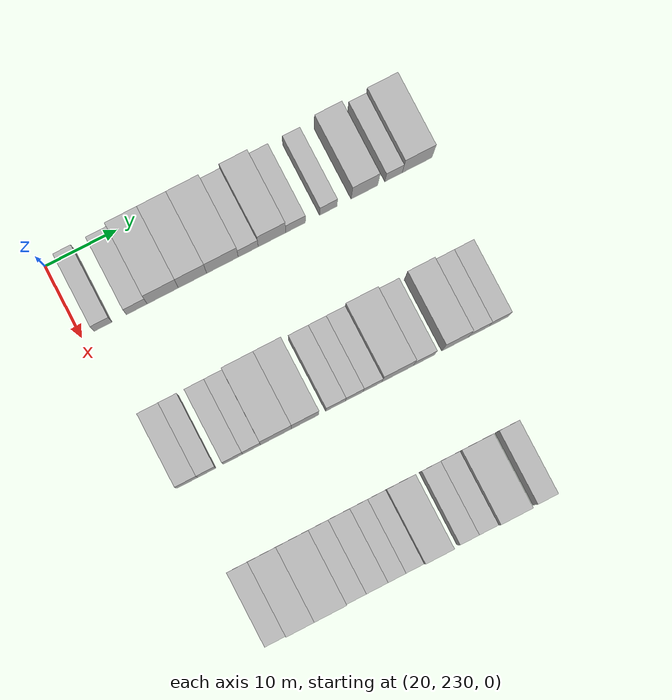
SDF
<sdf version="1.6">
 <world name="default">
  <model name="building_147">
   <static>1</static>
   <pose>25.0000 233.0039 0 0.000000 0.000000 0.000000</pose>
   <link name="link">
    <pose>0 0 3.00 0 0 0</pose>
    <collision name="collision"><geometry><box><size>10.0000 2.4675 6.0000</size></box></geometry></collision>
    <visual name="visual">
     <cast_shadows>0</cast_shadows>
     <geometry><box><size>10.0000 2.4675 6.0000</size></box></geometry>
     <material>
      <script>
       <uri>model://HANNAS_wall/materials/scripts</uri>
       <uri>model://HANNAS_wall/materials/textures</uri>
       <name>vrc/HANNAS_wall</name>
      </script>
     </material>
    </visual>
   </link>
  </model>
  <model name="building_148">
   <static>1</static>
   <pose>25.0000 237.6811 0 0.000000 0.000000 0.000000</pose>
   <link name="link">
    <pose>0 0 3.00 0 0 0</pose>
    <collision name="collision"><geometry><box><size>10.0000 2.8870 6.0000</size></box></geometry></collision>
    <visual name="visual">
     <cast_shadows>0</cast_shadows>
     <geometry><box><size>10.0000 2.8870 6.0000</size></box></geometry>
     <material>
      <script>
       <uri>model://HANNAS_wall/materials/scripts</uri>
       <uri>model://HANNAS_wall/materials/textures</uri>
       <name>vrc/HANNAS_wall</name>
      </script>
     </material>
    </visual>
   </link>
  </model>
  <model name="building_149">
   <static>1</static>
   <pose>25.0000 241.2977 0 0.000000 0.000000 0.000000</pose>
   <link name="link">
    <pose>0 0 4.50 0 0 0</pose>
    <collision name="collision"><geometry><box><size>10.0000 4.3461 9.0000</size></box></geometry></collision>
    <visual name="visual">
     <cast_shadows>0</cast_shadows>
     <geometry><box><size>10.0000 4.3461 9.0000</size></box></geometry>
     <material>
      <script>
       <uri>model://HANNAS_wall/materials/scripts</uri>
       <uri>model://HANNAS_wall/materials/textures</uri>
       <name>vrc/HANNAS_wall</name>
      </script>
     </material>
    </visual>
   </link>
  </model>
  <model name="building_150">
   <static>1</static>
   <pose>25.0000 245.4426 0 0.000000 0.000000 0.000000</pose>
   <link name="link">
    <pose>0 0 4.50 0 0 0</pose>
    <collision name="collision"><geometry><box><size>10.0000 3.9438 9.0000</size></box></geometry></collision>
    <visual name="visual">
     <cast_shadows>0</cast_shadows>
     <geometry><box><size>10.0000 3.9438 9.0000</size></box></geometry>
     <material>
      <script>
       <uri>model://HANNAS_wall/materials/scripts</uri>
       <uri>model://HANNAS_wall/materials/textures</uri>
       <name>vrc/HANNAS_wall</name>
      </script>
     </material>
    </visual>
   </link>
  </model>
  <model name="building_151">
   <static>1</static>
   <pose>25.0000 249.6217 0 0.000000 0.000000 0.000000</pose>
   <link name="link">
    <pose>0 0 4.50 0 0 0</pose>
    <collision name="collision"><geometry><box><size>10.0000 4.4144 9.0000</size></box></geometry></collision>
    <visual name="visual">
     <cast_shadows>0</cast_shadows>
     <geometry><box><size>10.0000 4.4144 9.0000</size></box></geometry>
     <material>
      <script>
       <uri>model://HANNAS_wall/materials/scripts</uri>
       <uri>model://HANNAS_wall/materials/textures</uri>
       <name>vrc/HANNAS_wall</name>
      </script>
     </material>
    </visual>
   </link>
  </model>
  <model name="building_152">
   <static>1</static>
   <pose>25.0000 253.2204 0 0.000000 0.000000 0.000000</pose>
   <link name="link">
    <pose>0 0 3.00 0 0 0</pose>
    <collision name="collision"><geometry><box><size>10.0000 2.7829 6.0000</size></box></geometry></collision>
    <visual name="visual">
     <cast_shadows>0</cast_shadows>
     <geometry><box><size>10.0000 2.7829 6.0000</size></box></geometry>
     <material>
      <script>
       <uri>model://HANNAS_wall/materials/scripts</uri>
       <uri>model://HANNAS_wall/materials/textures</uri>
       <name>vrc/HANNAS_wall</name>
      </script>
     </material>
    </visual>
   </link>
  </model>
  <model name="building_153">
   <static>1</static>
   <pose>25.0000 256.5295 0 0.000000 0.000000 0.000000</pose>
   <link name="link">
    <pose>0 0 4.50 0 0 0</pose>
    <collision name="collision"><geometry><box><size>10.0000 3.8353 9.0000</size></box></geometry></collision>
    <visual name="visual">
     <cast_shadows>0</cast_shadows>
     <geometry><box><size>10.0000 3.8353 9.0000</size></box></geometry>
     <material>
      <script>
       <uri>model://HANNAS_wall/materials/scripts</uri>
       <uri>model://HANNAS_wall/materials/textures</uri>
       <name>vrc/HANNAS_wall</name>
      </script>
     </material>
    </visual>
   </link>
  </model>
  <model name="building_154">
   <static>1</static>
   <pose>25.0000 259.8248 0 0.000000 0.000000 0.000000</pose>
   <link name="link">
    <pose>0 0 3.00 0 0 0</pose>
    <collision name="collision"><geometry><box><size>10.0000 2.7552 6.0000</size></box></geometry></collision>
    <visual name="visual">
     <cast_shadows>0</cast_shadows>
     <geometry><box><size>10.0000 2.7552 6.0000</size></box></geometry>
     <material>
      <script>
       <uri>model://HANNAS_wall/materials/scripts</uri>
       <uri>model://HANNAS_wall/materials/textures</uri>
       <name>vrc/HANNAS_wall</name>
      </script>
     </material>
    </visual>
   </link>
  </model>
  <model name="building_155">
   <static>1</static>
   <pose>25.0000 264.4104 0 0.000000 0.000000 0.000000</pose>
   <link name="link">
    <pose>0 0 3.00 0 0 0</pose>
    <collision name="collision"><geometry><box><size>10.0000 2.4160 6.0000</size></box></geometry></collision>
    <visual name="visual">
     <cast_shadows>0</cast_shadows>
     <geometry><box><size>10.0000 2.4160 6.0000</size></box></geometry>
     <material>
      <script>
       <uri>model://HANNAS_wall/materials/scripts</uri>
       <uri>model://HANNAS_wall/materials/textures</uri>
       <name>vrc/HANNAS_wall</name>
      </script>
     </material>
    </visual>
   </link>
  </model>
  <model name="building_156">
   <static>1</static>
   <pose>25.0000 269.4851 0 0.000000 0.000000 0.000000</pose>
   <link name="link">
    <pose>0 0 4.50 0 0 0</pose>
    <collision name="collision"><geometry><box><size>10.0000 3.7335 9.0000</size></box></geometry></collision>
    <visual name="visual">
     <cast_shadows>0</cast_shadows>
     <geometry><box><size>10.0000 3.7335 9.0000</size></box></geometry>
     <material>
      <script>
       <uri>model://HANNAS_wall/materials/scripts</uri>
       <uri>model://HANNAS_wall/materials/textures</uri>
       <name>vrc/HANNAS_wall</name>
      </script>
     </material>
    </visual>
   </link>
  </model>
  <model name="building_157">
   <static>1</static>
   <pose>25.0000 273.5731 0 0.000000 0.000000 0.000000</pose>
   <link name="link">
    <pose>0 0 3.00 0 0 0</pose>
    <collision name="collision"><geometry><box><size>10.0000 2.4425 6.0000</size></box></geometry></collision>
    <visual name="visual">
     <cast_shadows>0</cast_shadows>
     <geometry><box><size>10.0000 2.4425 6.0000</size></box></geometry>
     <material>
      <script>
       <uri>model://HANNAS_wall/materials/scripts</uri>
       <uri>model://HANNAS_wall/materials/textures</uri>
       <name>vrc/HANNAS_wall</name>
      </script>
     </material>
    </visual>
   </link>
  </model>
  <model name="building_158">
   <static>1</static>
   <pose>25.0000 276.8900 0 0.000000 0.000000 0.000000</pose>
   <link name="link">
    <pose>0 0 4.50 0 0 0</pose>
    <collision name="collision"><geometry><box><size>10.0000 4.1914 9.0000</size></box></geometry></collision>
    <visual name="visual">
     <cast_shadows>0</cast_shadows>
     <geometry><box><size>10.0000 4.1914 9.0000</size></box></geometry>
     <material>
      <script>
       <uri>model://HANNAS_wall/materials/scripts</uri>
       <uri>model://HANNAS_wall/materials/textures</uri>
       <name>vrc/HANNAS_wall</name>
      </script>
     </material>
    </visual>
   </link>
  </model>
  <model name="building_326">
   <static>1</static>
   <pose>47.0000 233.4302 0 0.000000 0.000000 0.000000</pose>
   <link name="link">
    <pose>0 0 3.00 0 0 0</pose>
    <collision name="collision"><geometry><box><size>10.0000 2.8937 6.0000</size></box></geometry></collision>
    <visual name="visual">
     <cast_shadows>0</cast_shadows>
     <geometry><box><size>10.0000 2.8937 6.0000</size></box></geometry>
     <material>
      <script>
       <uri>model://HANNAS_wall/materials/scripts</uri>
       <uri>model://HANNAS_wall/materials/textures</uri>
       <name>vrc/HANNAS_wall</name>
      </script>
     </material>
    </visual>
   </link>
  </model>
  <model name="building_327">
   <static>1</static>
   <pose>47.0000 236.1390 0 0.000000 0.000000 0.000000</pose>
   <link name="link">
    <pose>0 0 3.00 0 0 0</pose>
    <collision name="collision"><geometry><box><size>10.0000 2.5239 6.0000</size></box></geometry></collision>
    <visual name="visual">
     <cast_shadows>0</cast_shadows>
     <geometry><box><size>10.0000 2.5239 6.0000</size></box></geometry>
     <material>
      <script>
       <uri>model://HANNAS_wall/materials/scripts</uri>
       <uri>model://HANNAS_wall/materials/textures</uri>
       <name>vrc/HANNAS_wall</name>
      </script>
     </material>
    </visual>
   </link>
  </model>
  <model name="building_328">
   <static>1</static>
   <pose>47.0000 239.7476 0 0.000000 0.000000 0.000000</pose>
   <link name="link">
    <pose>0 0 3.00 0 0 0</pose>
    <collision name="collision"><geometry><box><size>10.0000 2.6932 6.0000</size></box></geometry></collision>
    <visual name="visual">
     <cast_shadows>0</cast_shadows>
     <geometry><box><size>10.0000 2.6932 6.0000</size></box></geometry>
     <material>
      <script>
       <uri>model://HANNAS_wall/materials/scripts</uri>
       <uri>model://HANNAS_wall/materials/textures</uri>
       <name>vrc/HANNAS_wall</name>
      </script>
     </material>
    </visual>
   </link>
  </model>
  <model name="building_329">
   <static>1</static>
   <pose>47.0000 242.3303 0 0.000000 0.000000 0.000000</pose>
   <link name="link">
    <pose>0 0 3.00 0 0 0</pose>
    <collision name="collision"><geometry><box><size>10.0000 2.4722 6.0000</size></box></geometry></collision>
    <visual name="visual">
     <cast_shadows>0</cast_shadows>
     <geometry><box><size>10.0000 2.4722 6.0000</size></box></geometry>
     <material>
      <script>
       <uri>model://HANNAS_wall/materials/scripts</uri>
       <uri>model://HANNAS_wall/materials/textures</uri>
       <name>vrc/HANNAS_wall</name>
      </script>
     </material>
    </visual>
   </link>
  </model>
  <model name="building_330">
   <static>1</static>
   <pose>47.0000 245.7153 0 0.000000 0.000000 0.000000</pose>
   <link name="link">
    <pose>0 0 4.50 0 0 0</pose>
    <collision name="collision"><geometry><box><size>10.0000 4.2978 9.0000</size></box></geometry></collision>
    <visual name="visual">
     <cast_shadows>0</cast_shadows>
     <geometry><box><size>10.0000 4.2978 9.0000</size></box></geometry>
     <material>
      <script>
       <uri>model://HANNAS_wall/materials/scripts</uri>
       <uri>model://HANNAS_wall/materials/textures</uri>
       <name>vrc/HANNAS_wall</name>
      </script>
     </material>
    </visual>
   </link>
  </model>
  <model name="building_331">
   <static>1</static>
   <pose>47.0000 249.7360 0 0.000000 0.000000 0.000000</pose>
   <link name="link">
    <pose>0 0 4.50 0 0 0</pose>
    <collision name="collision"><geometry><box><size>10.0000 3.7436 9.0000</size></box></geometry></collision>
    <visual name="visual">
     <cast_shadows>0</cast_shadows>
     <geometry><box><size>10.0000 3.7436 9.0000</size></box></geometry>
     <material>
      <script>
       <uri>model://HANNAS_wall/materials/scripts</uri>
       <uri>model://HANNAS_wall/materials/textures</uri>
       <name>vrc/HANNAS_wall</name>
      </script>
     </material>
    </visual>
   </link>
  </model>
  <model name="building_332">
   <static>1</static>
   <pose>47.0000 253.9769 0 0.000000 0.000000 0.000000</pose>
   <link name="link">
    <pose>0 0 3.00 0 0 0</pose>
    <collision name="collision"><geometry><box><size>10.0000 2.7381 6.0000</size></box></geometry></collision>
    <visual name="visual">
     <cast_shadows>0</cast_shadows>
     <geometry><box><size>10.0000 2.7381 6.0000</size></box></geometry>
     <material>
      <script>
       <uri>model://HANNAS_wall/materials/scripts</uri>
       <uri>model://HANNAS_wall/materials/textures</uri>
       <name>vrc/HANNAS_wall</name>
      </script>
     </material>
    </visual>
   </link>
  </model>
  <model name="building_333">
   <static>1</static>
   <pose>47.0000 256.5766 0 0.000000 0.000000 0.000000</pose>
   <link name="link">
    <pose>0 0 3.00 0 0 0</pose>
    <collision name="collision"><geometry><box><size>10.0000 2.4613 6.0000</size></box></geometry></collision>
    <visual name="visual">
     <cast_shadows>0</cast_shadows>
     <geometry><box><size>10.0000 2.4613 6.0000</size></box></geometry>
     <material>
      <script>
       <uri>model://HANNAS_wall/materials/scripts</uri>
       <uri>model://HANNAS_wall/materials/textures</uri>
       <name>vrc/HANNAS_wall</name>
      </script>
     </material>
    </visual>
   </link>
  </model>
  <model name="building_334">
   <static>1</static>
   <pose>47.0000 259.1070 0 0.000000 0.000000 0.000000</pose>
   <link name="link">
    <pose>0 0 3.00 0 0 0</pose>
    <collision name="collision"><geometry><box><size>10.0000 2.5995 6.0000</size></box></geometry></collision>
    <visual name="visual">
     <cast_shadows>0</cast_shadows>
     <geometry><box><size>10.0000 2.5995 6.0000</size></box></geometry>
     <material>
      <script>
       <uri>model://HANNAS_wall/materials/scripts</uri>
       <uri>model://HANNAS_wall/materials/textures</uri>
       <name>vrc/HANNAS_wall</name>
      </script>
     </material>
    </visual>
   </link>
  </model>
  <model name="building_335">
   <static>1</static>
   <pose>47.0000 262.6063 0 0.000000 0.000000 0.000000</pose>
   <link name="link">
    <pose>0 0 4.50 0 0 0</pose>
    <collision name="collision"><geometry><box><size>10.0000 4.3993 9.0000</size></box></geometry></collision>
    <visual name="visual">
     <cast_shadows>0</cast_shadows>
     <geometry><box><size>10.0000 4.3993 9.0000</size></box></geometry>
     <material>
      <script>
       <uri>model://HANNAS_wall/materials/scripts</uri>
       <uri>model://HANNAS_wall/materials/textures</uri>
       <name>vrc/HANNAS_wall</name>
      </script>
     </material>
    </visual>
   </link>
  </model>
  <model name="building_336">
   <static>1</static>
   <pose>47.0000 266.3006 0 0.000000 0.000000 0.000000</pose>
   <link name="link">
    <pose>0 0 3.00 0 0 0</pose>
    <collision name="collision"><geometry><box><size>10.0000 2.9892 6.0000</size></box></geometry></collision>
    <visual name="visual">
     <cast_shadows>0</cast_shadows>
     <geometry><box><size>10.0000 2.9892 6.0000</size></box></geometry>
     <material>
      <script>
       <uri>model://HANNAS_wall/materials/scripts</uri>
       <uri>model://HANNAS_wall/materials/textures</uri>
       <name>vrc/HANNAS_wall</name>
      </script>
     </material>
    </visual>
   </link>
  </model>
  <model name="building_337">
   <static>1</static>
   <pose>47.0000 270.6510 0 0.000000 0.000000 0.000000</pose>
   <link name="link">
    <pose>0 0 4.50 0 0 0</pose>
    <collision name="collision"><geometry><box><size>10.0000 3.7116 9.0000</size></box></geometry></collision>
    <visual name="visual">
     <cast_shadows>0</cast_shadows>
     <geometry><box><size>10.0000 3.7116 9.0000</size></box></geometry>
     <material>
      <script>
       <uri>model://HANNAS_wall/materials/scripts</uri>
       <uri>model://HANNAS_wall/materials/textures</uri>
       <name>vrc/HANNAS_wall</name>
      </script>
     </material>
    </visual>
   </link>
  </model>
  <model name="building_338">
   <static>1</static>
   <pose>47.0000 273.9385 0 0.000000 0.000000 0.000000</pose>
   <link name="link">
    <pose>0 0 3.00 0 0 0</pose>
    <collision name="collision"><geometry><box><size>10.0000 2.8635 6.0000</size></box></geometry></collision>
    <visual name="visual">
     <cast_shadows>0</cast_shadows>
     <geometry><box><size>10.0000 2.8635 6.0000</size></box></geometry>
     <material>
      <script>
       <uri>model://HANNAS_wall/materials/scripts</uri>
       <uri>model://HANNAS_wall/materials/textures</uri>
       <name>vrc/HANNAS_wall</name>
      </script>
     </material>
    </visual>
   </link>
  </model>
  <model name="building_339">
   <static>1</static>
   <pose>47.0000 276.7139 0 0.000000 0.000000 0.000000</pose>
   <link name="link">
    <pose>0 0 3.00 0 0 0</pose>
    <collision name="collision"><geometry><box><size>10.0000 2.6874 6.0000</size></box></geometry></collision>
    <visual name="visual">
     <cast_shadows>0</cast_shadows>
     <geometry><box><size>10.0000 2.6874 6.0000</size></box></geometry>
     <material>
      <script>
       <uri>model://HANNAS_wall/materials/scripts</uri>
       <uri>model://HANNAS_wall/materials/textures</uri>
       <name>vrc/HANNAS_wall</name>
      </script>
     </material>
    </visual>
   </link>
  </model>
  <model name="building_510">
   <static>1</static>
   <pose>69.0000 234.2905 0 0.000000 0.000000 0.000000</pose>
   <link name="link">
    <pose>0 0 3.00 0 0 0</pose>
    <collision name="collision"><geometry><box><size>10.0000 2.8925 6.0000</size></box></geometry></collision>
    <visual name="visual">
     <cast_shadows>0</cast_shadows>
     <geometry><box><size>10.0000 2.8925 6.0000</size></box></geometry>
     <material>
      <script>
       <uri>model://HANNAS_wall/materials/scripts</uri>
       <uri>model://HANNAS_wall/materials/textures</uri>
       <name>vrc/HANNAS_wall</name>
      </script>
     </material>
    </visual>
   </link>
  </model>
  <model name="building_511">
   <static>1</static>
   <pose>69.0000 237.6364 0 0.000000 0.000000 0.000000</pose>
   <link name="link">
    <pose>0 0 4.50 0 0 0</pose>
    <collision name="collision"><geometry><box><size>10.0000 3.7993 9.0000</size></box></geometry></collision>
    <visual name="visual">
     <cast_shadows>0</cast_shadows>
     <geometry><box><size>10.0000 3.7993 9.0000</size></box></geometry>
     <material>
      <script>
       <uri>model://HANNAS_wall/materials/scripts</uri>
       <uri>model://HANNAS_wall/materials/textures</uri>
       <name>vrc/HANNAS_wall</name>
      </script>
     </material>
    </visual>
   </link>
  </model>
  <model name="building_512">
   <static>1</static>
   <pose>69.0000 241.7159 0 0.000000 0.000000 0.000000</pose>
   <link name="link">
    <pose>0 0 4.50 0 0 0</pose>
    <collision name="collision"><geometry><box><size>10.0000 4.3597 9.0000</size></box></geometry></collision>
    <visual name="visual">
     <cast_shadows>0</cast_shadows>
     <geometry><box><size>10.0000 4.3597 9.0000</size></box></geometry>
     <material>
      <script>
       <uri>model://HANNAS_wall/materials/scripts</uri>
       <uri>model://HANNAS_wall/materials/textures</uri>
       <name>vrc/HANNAS_wall</name>
      </script>
     </material>
    </visual>
   </link>
  </model>
  <model name="building_513">
   <static>1</static>
   <pose>69.0000 245.2506 0 0.000000 0.000000 0.000000</pose>
   <link name="link">
    <pose>0 0 3.00 0 0 0</pose>
    <collision name="collision"><geometry><box><size>10.0000 2.7098 6.0000</size></box></geometry></collision>
    <visual name="visual">
     <cast_shadows>0</cast_shadows>
     <geometry><box><size>10.0000 2.7098 6.0000</size></box></geometry>
     <material>
      <script>
       <uri>model://HANNAS_wall/materials/scripts</uri>
       <uri>model://HANNAS_wall/materials/textures</uri>
       <name>vrc/HANNAS_wall</name>
      </script>
     </material>
    </visual>
   </link>
  </model>
  <model name="building_514">
   <static>1</static>
   <pose>69.0000 248.0808 0 0.000000 0.000000 0.000000</pose>
   <link name="link">
    <pose>0 0 3.00 0 0 0</pose>
    <collision name="collision"><geometry><box><size>10.0000 2.9504 6.0000</size></box></geometry></collision>
    <visual name="visual">
     <cast_shadows>0</cast_shadows>
     <geometry><box><size>10.0000 2.9504 6.0000</size></box></geometry>
     <material>
      <script>
       <uri>model://HANNAS_wall/materials/scripts</uri>
       <uri>model://HANNAS_wall/materials/textures</uri>
       <name>vrc/HANNAS_wall</name>
      </script>
     </material>
    </visual>
   </link>
  </model>
  <model name="building_515">
   <static>1</static>
   <pose>69.0000 250.7707 0 0.000000 0.000000 0.000000</pose>
   <link name="link">
    <pose>0 0 3.00 0 0 0</pose>
    <collision name="collision"><geometry><box><size>10.0000 2.4295 6.0000</size></box></geometry></collision>
    <visual name="visual">
     <cast_shadows>0</cast_shadows>
     <geometry><box><size>10.0000 2.4295 6.0000</size></box></geometry>
     <material>
      <script>
       <uri>model://HANNAS_wall/materials/scripts</uri>
       <uri>model://HANNAS_wall/materials/textures</uri>
       <name>vrc/HANNAS_wall</name>
      </script>
     </material>
    </visual>
   </link>
  </model>
  <model name="building_516">
   <static>1</static>
   <pose>69.0000 253.2134 0 0.000000 0.000000 0.000000</pose>
   <link name="link">
    <pose>0 0 3.00 0 0 0</pose>
    <collision name="collision"><geometry><box><size>10.0000 2.4559 6.0000</size></box></geometry></collision>
    <visual name="visual">
     <cast_shadows>0</cast_shadows>
     <geometry><box><size>10.0000 2.4559 6.0000</size></box></geometry>
     <material>
      <script>
       <uri>model://HANNAS_wall/materials/scripts</uri>
       <uri>model://HANNAS_wall/materials/textures</uri>
       <name>vrc/HANNAS_wall</name>
      </script>
     </material>
    </visual>
   </link>
  </model>
  <model name="building_517">
   <static>1</static>
   <pose>69.0000 256.3888 0 0.000000 0.000000 0.000000</pose>
   <link name="link">
    <pose>0 0 4.50 0 0 0</pose>
    <collision name="collision"><geometry><box><size>10.0000 3.8949 9.0000</size></box></geometry></collision>
    <visual name="visual">
     <cast_shadows>0</cast_shadows>
     <geometry><box><size>10.0000 3.8949 9.0000</size></box></geometry>
     <material>
      <script>
       <uri>model://HANNAS_wall/materials/scripts</uri>
       <uri>model://HANNAS_wall/materials/textures</uri>
       <name>vrc/HANNAS_wall</name>
      </script>
     </material>
    </visual>
   </link>
  </model>
  <model name="building_518">
   <static>1</static>
   <pose>69.0000 260.6379 0 0.000000 0.000000 0.000000</pose>
   <link name="link">
    <pose>0 0 3.00 0 0 0</pose>
    <collision name="collision"><geometry><box><size>10.0000 2.6034 6.0000</size></box></geometry></collision>
    <visual name="visual">
     <cast_shadows>0</cast_shadows>
     <geometry><box><size>10.0000 2.6034 6.0000</size></box></geometry>
     <material>
      <script>
       <uri>model://HANNAS_wall/materials/scripts</uri>
       <uri>model://HANNAS_wall/materials/textures</uri>
       <name>vrc/HANNAS_wall</name>
      </script>
     </material>
    </visual>
   </link>
  </model>
  <model name="building_519">
   <static>1</static>
   <pose>69.0000 263.2538 0 0.000000 0.000000 0.000000</pose>
   <link name="link">
    <pose>0 0 3.00 0 0 0</pose>
    <collision name="collision"><geometry><box><size>10.0000 2.6284 6.0000</size></box></geometry></collision>
    <visual name="visual">
     <cast_shadows>0</cast_shadows>
     <geometry><box><size>10.0000 2.6284 6.0000</size></box></geometry>
     <material>
      <script>
       <uri>model://HANNAS_wall/materials/scripts</uri>
       <uri>model://HANNAS_wall/materials/textures</uri>
       <name>vrc/HANNAS_wall</name>
      </script>
     </material>
    </visual>
   </link>
  </model>
  <model name="building_520">
   <static>1</static>
   <pose>69.0000 266.7416 0 0.000000 0.000000 0.000000</pose>
   <link name="link">
    <pose>0 0 4.50 0 0 0</pose>
    <collision name="collision"><geometry><box><size>10.0000 4.3472 9.0000</size></box></geometry></collision>
    <visual name="visual">
     <cast_shadows>0</cast_shadows>
     <geometry><box><size>10.0000 4.3472 9.0000</size></box></geometry>
     <material>
      <script>
       <uri>model://HANNAS_wall/materials/scripts</uri>
       <uri>model://HANNAS_wall/materials/textures</uri>
       <name>vrc/HANNAS_wall</name>
      </script>
     </material>
    </visual>
   </link>
  </model>
  <model name="building_521">
   <static>1</static>
   <pose>69.0000 271.3154 0 0.000000 0.000000 0.000000</pose>
   <link name="link">
    <pose>0 0 3.00 0 0 0</pose>
    <collision name="collision"><geometry><box><size>10.0000 2.8004 6.0000</size></box></geometry></collision>
    <visual name="visual">
     <cast_shadows>0</cast_shadows>
     <geometry><box><size>10.0000 2.8004 6.0000</size></box></geometry>
     <material>
      <script>
       <uri>model://HANNAS_wall/materials/scripts</uri>
       <uri>model://HANNAS_wall/materials/textures</uri>
       <name>vrc/HANNAS_wall</name>
      </script>
     </material>
    </visual>
   </link>
  </model>
 </world>
</sdf>
